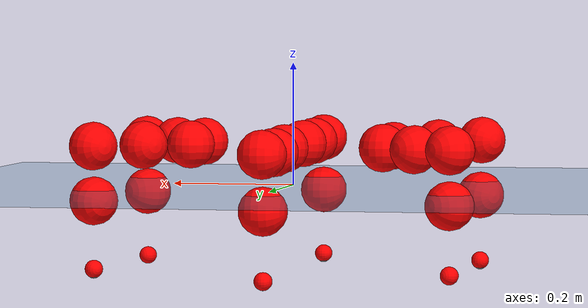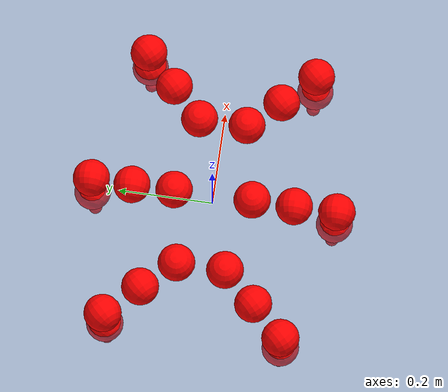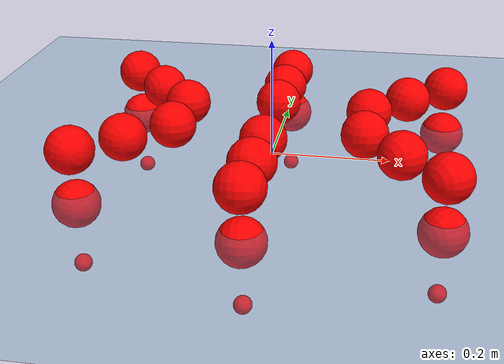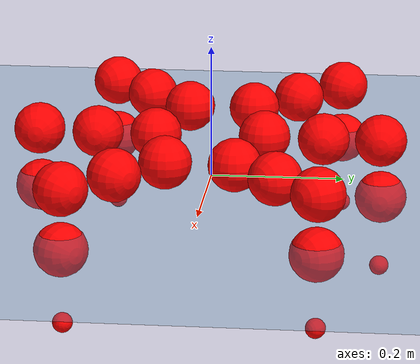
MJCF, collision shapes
<mujoco model="Golem">
  <compiler angle="radian" assetdir="assets" balanceinertia="true" inertiafromgeom="false"/>

  <option timestep="0.005" density="1.2" viscosity="2e-05"/>

  <size nkey="1"/>

  <visual>
    <quality shadowsize="8192"/>
    <map shadowclip="0.5"/>
  </visual>

  <default>
    <default class="/">
      <joint armature="0.01" damping="0.01" frictionloss="0.01"/>
      <geom contype="0" conaffinity="0" group="1" solref="-1000 -80"/>
      <site size="0.01 0.005 0.005" group="5"/>
      <general forcelimited="true" biastype="affine" gainprm="25" biasprm="0 -25 -0.5"/>
      <default class="visual">
        <geom type="mesh" group="2"/>
      </default>
      <default class="collision">
        <geom group="3"/>
      </default>
      <default class="foot">
        <geom size="0.01 0 0" condim="6" group="4" priority="1" solimp="0.015 1 0.01"/>
      </default>
      <default class="reward_collision_sphere">
        <geom group="5" rgba="1 0 0 1"/>
      </default>
    </default>
  </default>

  <asset>
    <texture type="skybox" colorspace="auto" name="//unnamed_texture_0" builtin="gradient" rgb1="0.95 0.95 0.95" rgb2="0.95 0.95 0.95" width="100" height="600"/>
    <texture type="2d" colorspace="auto" name="texplane" builtin="checker" rgb1="0.345 0.575 0.748" rgb2="0.345 0.575 0.748" markrgb="1 1 1" width="512" height="512"/>
    <material name="MatPlane" class="/" texture="texplane" texuniform="true" texrepeat="2 2" specular="0.9"/>
    <mesh name="body" class="/" file="body.stl" scale="0.001 0.001 0.001"/>
    <mesh name="coxa" class="/" file="coxa.stl" scale="0.001 0.001 0.001"/>
    <mesh name="femur" class="/" file="femur.stl" scale="0.001 0.001 0.001"/>
    <mesh name="tibia" class="/" file="tibia.stl" scale="0.001 0.001 0.001"/>
    <mesh name="tarsus" class="/" file="tarsus.stl" scale="0.001 0.001 0.001"/>
  </asset>

  <worldbody>
    <geom name="floor" class="/" size="100 100 0.125" type="plane" group="0" material="MatPlane"/>
    <light name="toplight_shadow" class="/" pos="0 0 5" dir="0.0990148 0.0990148 -0.990148" type="directional" ambient="0.04 0.04 0.04" diffuse="0.55 0.55 0.55" specular="0.12 0.12 0.12"/>
    <light name="toplight_fill" class="/" pos="0 0 5" dir="0.0990148 0.0990148 -0.990148" type="directional" castshadow="false" ambient="0.04 0.04 0.04" diffuse="0.3 0.3 0.3" specular="0.08 0.08 0.08"/>
    <body name="trunk" pos="-0.000163468 0.000438747 -0.00135849" quat="1 -0.000377024 -0.000503877 -0.000278291">
      <inertial pos="0.00260318 0.001154 -0.00475722" quat="0.9999 -0.0135043 0.00400187 -0.00102802" mass="3.39721" diaginertia="0.0111361 0.00437243 0.0135506"/>
      <joint name="//unnamed_joint_0" type="free"/>
      <geom name="//unnamed_geom_1" class="/" pos="0 0 0.0675719" quat="1 0 0 0" type="mesh" rgba="0.9 0.9 0.9 1" mesh="body"/>
      <site name="imu" class="/" pos="0.128188 0.000217924 0.100588" size="0.00974264"/>
      <camera name="track" class="/" pos="0 -1.69573 0" quat="0.707107 0.707107 0 0" mode="trackcom"/>
      <camera name="ego_camera" class="/" pos="0.132485 0 0.105581" quat="-0.5 -0.5 0.5 0.5"/>
      <body name="coxa_RR" pos="-0.179957 -0.0711957 0.064996" quat="0.382729 -3.90226e-05 6.88128e-05 -0.923861">
        <inertial pos="-0.000500138 -0.00268101 0.000524779" quat="1 -8.23371e-05 -0.000351002 -2.74113e-05" mass="0.179651" diaginertia="0.0106419 0.00407872 0.0130654"/>
        <joint name="coxa_joint_RR" class="/" pos="0 0 0" axis="0.00148285 -0.00298852 -0.999994" range="-3.19331 3.14606" armature="0.0100615" damping="0" frictionloss="0.00959644"/>
        <geom name="//unnamed_geom_2" class="/" type="mesh" rgba="0.2 0.2 0.2 1" mesh="coxa"/>
        <geom name="//unnamed_geom_3" class="reward_collision_sphere" size="0.0389706" pos="-0.0305735 0 0"/>
        <body name="femur_RR" pos="0.0624326 0.00234049 0.00213708" quat="0.499719 -0.499833 0.499384 0.501062">
          <inertial pos="0.00137315 -0.000222016 -0.00277442" quat="0.999992 0.000155331 -0.00169183 -0.00370993" mass="0.179592" diaginertia="0.0108828 0.00425628 0.0132971"/>
          <joint name="femur_joint_RR" class="/" pos="0 0 0" axis="0.000818987 -0.00766 -0.99997" range="-3.13609 3.18114" armature="0.00983726" damping="0" frictionloss="0.0110445"/>
          <geom name="//unnamed_geom_4" class="/" type="mesh" rgba="0.9 0.9 0.9 1" mesh="femur"/>
          <geom name="//unnamed_geom_5" class="reward_collision_sphere" size="0.0389706"/>
          <body name="tibia_RR" pos="-0.00211756 -0.0912132 0.000471034" quat="-0.000169248 1 -0.000107325 -8.1709e-05">
            <inertial pos="0.000983366 -0.000580178 -0.00101692" quat="0.999996 -0.00138133 -0.0013862 0.00183387" mass="0.184771" diaginertia="0.0113606 0.00443336 0.0134458"/>
            <joint name="tibia_joint_RR" class="/" pos="0 0 0" axis="0.0103398 -0.0104404 0.999892" range="-3.0858 3.11092" armature="0.0101702" damping="0.020911" frictionloss="0.00857063"/>
            <geom name="//unnamed_geom_6" class="/" type="mesh" rgba="0.2 0.2 0.2 1" mesh="tibia"/>
            <geom name="//unnamed_geom_7" class="reward_collision_sphere" size="0.0389706"/>
            <body name="tarsus_RR" pos="0.0922813 -0.000229397 -0.00304629" quat="0.999999 0.000335938 0.000682229 -0.00114803">
              <inertial pos="0.0592171 0.000347259 -0.00270017" quat="0.501133 0.494147 0.502341 0.502332" mass="0.186226" diaginertia="0.0107227 0.00443029 0.0126488"/>
              <joint name="tarsus_joint_RR" class="/" pos="0 0 0" axis="-0.00358706 0.00156786 0.999992" range="-3.19314 3.1319" armature="0.00878544" damping="0" frictionloss="0.0108234"/>
              <geom name="//unnamed_geom_8" class="/" type="mesh" rgba="0.9 0.9 0.9 1" mesh="tarsus"/>
              <geom name="foot_1" class="foot" size="0.0107696" pos="0.114141 0 0" quat="0 -0.707107 0 0.707107"/>
              <geom name="//unnamed_geom_10" class="reward_collision_sphere" size="0.0389706"/>
              <geom name="//unnamed_geom_11" class="reward_collision_sphere" size="0.014614" pos="0.109555 0 0"/>
              <site name="foot_1" class="foot" pos="0.114141 0 0" quat="0 -0.707107 0 0.707107" size="0.00974264"/>
            </body>
          </body>
        </body>
      </body>
      <body name="coxa_RM" pos="-0.000248504 -0.115021 0.0652227" quat="0.707108 -0.000227401 6.23791e-05 -0.707105">
        <inertial pos="0.00273745 -0.000551977 -0.00159391" quat="1 0.000680074 0.000428096 0.00039923" mass="0.181141" diaginertia="0.0108705 0.00449284 0.0132812"/>
        <joint name="coxa_joint_RM" class="/" pos="0 0 0" axis="0.00079484 0.000193688 -1" range="-3.15788 3.13529" armature="0.0110192" damping="0.00114409" frictionloss="0.010883"/>
        <geom name="//unnamed_geom_12" class="/" type="mesh" rgba="0.2 0.2 0.2 1" mesh="coxa"/>
        <geom name="//unnamed_geom_13" class="reward_collision_sphere" size="0.0389706" pos="-0.0305735 0 0"/>
        <body name="femur_RM" pos="0.0581995 -0.00188043 0.000341312" quat="0.500051 -0.50005 0.499863 0.500036">
          <inertial pos="0.000660444 -0.00300117 -0.000183997" quat="0.99994 0.000341709 0.00631066 0.00889976" mass="0.182072" diaginertia="0.010642 0.00434372 0.0128048"/>
          <joint name="femur_joint_RM" class="/" pos="0 0 0" axis="-0.0038145 -0.011617 -0.999925" stiffness="0.00905671" range="-3.14916 3.11616" armature="0.0104656" damping="0.0248959" frictionloss="0.00836499"/>
          <geom name="//unnamed_geom_14" class="/" type="mesh" rgba="0.9 0.9 0.9 1" mesh="femur"/>
          <geom name="//unnamed_geom_15" class="reward_collision_sphere" size="0.0389706"/>
          <body name="tibia_RM" pos="-0.00197993 -0.0894852 -0.000565668" quat="0.000745065 0.999999 -0.00108423 0.000543389">
            <inertial pos="-0.00279509 -0.000144293 -0.000898945" quat="0.999901 0.00882439 -0.00895853 0.00625928" mass="0.179975" diaginertia="0.010628 0.00423674 0.0128188"/>
            <joint name="tibia_joint_RM" class="/" pos="0 0 0" axis="7.04104e-06 -7.62809e-05 1" range="-3.15917 3.19431" armature="0.00881835" damping="0.00806853" frictionloss="0.0098671"/>
            <geom name="//unnamed_geom_16" class="/" type="mesh" rgba="0.2 0.2 0.2 1" mesh="tibia"/>
            <geom name="//unnamed_geom_17" class="reward_collision_sphere" size="0.0389706"/>
            <body name="tarsus_RM" pos="0.0897523 -0.00115402 -7.2103e-05" quat="1 -7.2842e-06 0.000412807 -8.07275e-05">
              <inertial pos="0.062849 0.00139429 0.00218149" quat="0.502685 0.50208 0.49685 0.49836" mass="0.183723" diaginertia="0.0109843 0.00431202 0.0130244"/>
              <joint name="tarsus_joint_RM" class="/" pos="0 0 0" axis="0.00776702 -3.96456e-05 0.99997" range="-3.18577 3.09883" armature="0.00967867" damping="0.00469777" frictionloss="0.00861888"/>
              <geom name="//unnamed_geom_18" class="/" type="mesh" rgba="0.9 0.9 0.9 1" mesh="tarsus"/>
              <geom name="foot_2" class="foot" size="0.0107948" pos="0.114141 0 0" quat="0 -0.707107 0 0.707107"/>
              <geom name="//unnamed_geom_20" class="reward_collision_sphere" size="0.0389706"/>
              <geom name="//unnamed_geom_21" class="reward_collision_sphere" size="0.014614" pos="0.109555 0 0"/>
              <site name="foot_2" class="foot" pos="0.114141 0 0" quat="0 -0.707107 0 0.707107" size="0.00974264"/>
            </body>
          </body>
        </body>
      </body>
      <body name="coxa_RF" pos="0.181319 -0.0731915 0.0691306" quat="0.923475 -0.000712551 0.000457686 -0.383658">
        <inertial pos="-0.000974192 -0.00108515 0.00236008" quat="0.999983 0.00344325 -0.00429485 -0.00170263" mass="0.174319" diaginertia="0.0103188 0.00424137 0.012729"/>
        <joint name="coxa_joint_RF" class="/" pos="0 0 0" axis="-0.00408662 -0.00636242 -0.999971" range="-3.12308 3.19431" armature="0.00876882" damping="0" frictionloss="0.010133"/>
        <geom name="//unnamed_geom_22" class="/" type="mesh" rgba="0.2 0.2 0.2 1" mesh="coxa"/>
        <geom name="//unnamed_geom_23" class="reward_collision_sphere" size="0.0389706" pos="-0.0305735 0 0"/>
        <body name="femur_RF" pos="0.0592293 -0.0029801 -0.00216219" quat="0.499707 -0.499913 0.500148 0.500231">
          <inertial pos="-0.0024678 0.000999709 -0.00100185" quat="0.999961 -0.00576471 -0.00488739 0.00459923" mass="0.183114" diaginertia="0.0106735 0.00439185 0.0128651"/>
          <joint name="femur_joint_RF" class="/" pos="0 0 0" axis="-0.00150007 -0.00151568 -0.999998" stiffness="0.00757669" range="-3.1222 3.08315" armature="0.0100704" damping="0" frictionloss="0.00839389"/>
          <geom name="//unnamed_geom_24" class="/" type="mesh" rgba="0.9 0.9 0.9 1" mesh="femur"/>
          <geom name="//unnamed_geom_25" class="reward_collision_sphere" size="0.0389706"/>
          <body name="tibia_RF" pos="0.00100715 -0.0947054 0.0022718" quat="0.000126577 1 7.41432e-07 9.02779e-05">
            <inertial pos="0.000441012 -4.71892e-07 -0.000181681" quat="0.999964 0.00048809 -0.00452088 0.00711835" mass="0.178932" diaginertia="0.0105535 0.00421177 0.0131637"/>
            <joint name="tibia_joint_RF" class="/" pos="0 0 0" axis="0.0043864 0.00815991 0.999957" range="-3.12226 3.1946" armature="0.0095518" damping="0.000802199" frictionloss="0.0111205"/>
            <geom name="//unnamed_geom_26" class="/" type="mesh" rgba="0.2 0.2 0.2 1" mesh="tibia"/>
            <geom name="//unnamed_geom_27" class="reward_collision_sphere" size="0.0389706"/>
            <body name="tarsus_RF" pos="0.0896785 0.000400867 0.00111246" quat="0.999999 0.000862509 0.000737599 -0.000266393">
              <inertial pos="0.0588908 0.000907593 0.0016368" quat="0.503656 0.498142 0.49852 0.499664" mass="0.190707" diaginertia="0.0111153 0.00445748 0.0135127"/>
              <joint name="tarsus_joint_RF" class="/" pos="0 0 0" axis="-0.0100486 -0.0100595 0.999899" stiffness="0.0262183" range="-3.09611 3.14588" armature="0.0100818" damping="0.0082762" frictionloss="0.0099853"/>
              <geom name="//unnamed_geom_28" class="/" type="mesh" rgba="0.9 0.9 0.9 1" mesh="tarsus"/>
              <geom name="foot_3" class="foot" size="0.00953119" pos="0.114141 0 0" quat="0 -0.707107 0 0.707107"/>
              <geom name="//unnamed_geom_30" class="reward_collision_sphere" size="0.0389706"/>
              <geom name="//unnamed_geom_31" class="reward_collision_sphere" size="0.014614" pos="0.109555 0 0"/>
              <site name="foot_3" class="foot" pos="0.114141 0 0" quat="0 -0.707107 0 0.707107" size="0.00974264"/>
            </body>
          </body>
        </body>
      </body>
      <body name="coxa_LR" pos="-0.178763 0.0735134 0.0661179" quat="0.382521 0.000649585 0.000114695 0.923946">
        <inertial pos="-0.0024099 -0.00241811 0.000803019" quat="0.999931 0.00550005 0.0103448 0.00118708" mass="0.179886" diaginertia="0.0106413 0.00411327 0.0127046"/>
        <joint name="coxa_joint_LR" class="/" pos="0 0 0" axis="-0.00222385 0.00332899 -0.999992" stiffness="0.0133875" range="-3.19552 3.19359" armature="0.0109907" damping="0" frictionloss="0.00924631"/>
        <geom name="//unnamed_geom_32" class="/" type="mesh" rgba="0.2 0.2 0.2 1" mesh="coxa"/>
        <geom name="//unnamed_geom_33" class="reward_collision_sphere" size="0.0389706" pos="-0.0305735 0 0"/>
        <body name="femur_LR" pos="0.0599396 -0.003642 0.0012583" quat="0.499167 -0.500604 0.500324 0.499904">
          <inertial pos="-0.000575723 0.000366176 -5.52807e-05" quat="1 5.96686e-05 0.000354539 0.000277922" mass="0.186569" diaginertia="0.0109166 0.00453166 0.013094"/>
          <joint name="femur_joint_LR" class="/" pos="0 0 0" axis="-0.00427231 -0.000567481 0.999991" range="-3.11211 3.12679" armature="0.00996449" damping="0.017885" frictionloss="0.00966144"/>
          <geom name="//unnamed_geom_34" class="/" type="mesh" rgba="0.9 0.9 0.9 1" mesh="femur"/>
          <geom name="//unnamed_geom_35" class="reward_collision_sphere" size="0.0389706"/>
          <body name="tibia_LR" pos="-0.00276246 -0.0952641 -0.000292001" quat="-0.00136228 0.999999 0.000289017 0.000362387">
            <inertial pos="0.00291141 -0.00222247 -0.00223539" quat="0.999965 0.00285048 7.70687e-05 0.00791092" mass="0.186845" diaginertia="0.0108428 0.00428243 0.0133226"/>
            <joint name="tibia_joint_LR" class="/" pos="0 0 0" axis="0.01351 0.00356895 -0.999902" range="-3.08346 3.1644" armature="0.0107659" damping="0" frictionloss="0.00970269"/>
            <geom name="//unnamed_geom_36" class="/" type="mesh" rgba="0.2 0.2 0.2 1" mesh="tibia"/>
            <geom name="//unnamed_geom_37" class="reward_collision_sphere" size="0.0389706"/>
            <body name="tarsus_LR" pos="0.0873166 -0.000878403 0.000279876" quat="0.999999 -0.000509414 -0.000152239 0.00112387">
              <inertial pos="0.058799 -0.000479435 -0.00127374" quat="0.508362 0.503294 0.491722 0.49646" mass="0.182997" diaginertia="0.0113583 0.00423207 0.0128961"/>
              <joint name="tarsus_joint_LR" class="/" pos="0 0 0" axis="-0.0062834 0.000806423 -0.99998" range="-3.19284 3.08186" armature="0.00853107" damping="0.0025927" frictionloss="0.00837409"/>
              <geom name="//unnamed_geom_38" class="/" type="mesh" rgba="0.9 0.9 0.9 1" mesh="tarsus"/>
              <geom name="foot_4" class="foot" size="0.00970893" pos="0.114141 0 0" quat="0.707107 0 -0.707107 0"/>
              <geom name="//unnamed_geom_40" class="reward_collision_sphere" size="0.0389706"/>
              <geom name="//unnamed_geom_41" class="reward_collision_sphere" size="0.014614" pos="0.109555 0 0"/>
              <site name="foot_4" class="foot" pos="0.114141 0 0" quat="0.707107 0 -0.707107 0" size="0.00974264"/>
            </body>
          </body>
        </body>
      </body>
      <body name="coxa_LM" pos="-0.000706036 0.110601 0.0651422" quat="0.707325 -5.56768e-05 0.000338263 0.706888">
        <inertial pos="-0.00168717 -0.00252244 0.00271687" quat="0.999967 0.00116109 0.00601013 -0.0053573" mass="0.180773" diaginertia="0.0113044 0.00440993 0.0132504"/>
        <joint name="coxa_joint_LM" class="/" pos="0 0 0" axis="0.00051215 -1.55437e-06 -1" range="-3.15814 3.16199" armature="0.0106626" damping="0.00822322" frictionloss="0.0111051"/>
        <geom name="//unnamed_geom_42" class="/" type="mesh" rgba="0.2 0.2 0.2 1" mesh="coxa"/>
        <geom name="//unnamed_geom_43" class="reward_collision_sphere" size="0.0389706" pos="-0.0305735 0 0"/>
        <body name="femur_LM" pos="0.0584824 0.000761907 -0.00183158" quat="0.499706 -0.500065 0.50025 0.499979">
          <inertial pos="0.00255644 -0.000369679 -0.00157578" quat="0.99993 0.00199481 0.004266 -0.0108635" mass="0.196575" diaginertia="0.0111297 0.00454333 0.0131771"/>
          <joint name="femur_joint_LM" class="/" pos="0 0 0" axis="-0.000365578 0.000205439 1" range="-3.10514 3.12265" armature="0.00975399" damping="0.0167874" frictionloss="0.0084666"/>
          <geom name="//unnamed_geom_44" class="/" type="mesh" rgba="0.9 0.9 0.9 1" mesh="femur"/>
          <geom name="//unnamed_geom_45" class="reward_collision_sphere" size="0.0389706"/>
          <body name="tibia_LM" pos="-0.00098472 -0.0859919 -0.00209325" quat="-0.000265632 1 3.60366e-06 0.000914223">
            <inertial pos="0.00284164 -0.00119534 -0.00178224" quat="0.999976 0.00622061 0.00220766 0.00220312" mass="0.187164" diaginertia="0.0111226 0.00439452 0.0128486"/>
            <joint name="tibia_joint_LM" class="/" pos="0 0 0" axis="-0.00502553 -0.0144597 -0.999883" stiffness="0.00052126" range="-3.14465 3.1377" armature="0.0095549" damping="0.00762567" frictionloss="0.00871042"/>
            <geom name="//unnamed_geom_46" class="/" type="mesh" rgba="0.2 0.2 0.2 1" mesh="tibia"/>
            <geom name="//unnamed_geom_47" class="reward_collision_sphere" size="0.0389706"/>
            <body name="tarsus_LM" pos="0.089005 0.00140947 -0.00181375" quat="1 -0.000450229 0.000562314 -0.000294286">
              <inertial pos="0.0614648 -0.000152427 0.0028621" quat="0.495162 0.499228 0.501357 0.504211" mass="0.19019" diaginertia="0.0110761 0.00428254 0.0132491"/>
              <joint name="tarsus_joint_LM" class="/" pos="0 0 0" axis="0.000492547 8.4012e-05 -1" stiffness="0.0010729" range="-3.15299 3.15511" armature="0.010128" damping="0.00116114" frictionloss="0.0104415"/>
              <geom name="//unnamed_geom_48" class="/" type="mesh" rgba="0.9 0.9 0.9 1" mesh="tarsus"/>
              <geom name="foot_5" class="foot" size="0.0100599" pos="0.114141 0 0" quat="0.707107 0 -0.707107 0"/>
              <geom name="//unnamed_geom_50" class="reward_collision_sphere" size="0.0389706"/>
              <geom name="//unnamed_geom_51" class="reward_collision_sphere" size="0.014614" pos="0.109555 0 0"/>
              <site name="foot_5" class="foot" pos="0.114141 0 0" quat="0.707107 0 -0.707107 0" size="0.00974264"/>
            </body>
          </body>
        </body>
      </body>
      <body name="coxa_LF" pos="0.182329 0.0710397 0.0686702" quat="0.923811 -0.00016766 -0.000336366 0.382849">
        <inertial pos="0.000627757 0.000483819 0.00182101" quat="0.999927 -0.0101523 -0.00638765 0.00154825" mass="0.180819" diaginertia="0.0109468 0.00450508 0.0128363"/>
        <joint name="coxa_joint_LF" class="/" pos="0 0 0" axis="-1.40368e-05 0.0117071 -0.999931" range="-3.14329 3.12729" armature="0.00862704" damping="0.000485055" frictionloss="0.0096384"/>
        <geom name="//unnamed_geom_52" class="/" type="mesh" rgba="0.2 0.2 0.2 1" mesh="coxa"/>
        <geom name="//unnamed_geom_53" class="reward_collision_sphere" size="0.0389706" pos="-0.0305735 0 0"/>
        <body name="femur_LF" pos="0.059313 -0.000705264 0.00156797" quat="0.500058 -0.499998 0.499976 0.499968">
          <inertial pos="-6.15333e-05 0.000226726 -0.000316544" quat="0.99999 0.00182344 -0.00315778 0.00273304" mass="0.176316" diaginertia="0.0110212 0.00430382 0.0130115"/>
          <joint name="femur_joint_LF" class="/" pos="0 0 0" axis="0.00100841 0.00186187 0.999998" stiffness="0.000296654" range="-3.1599 3.15886" armature="0.0111172" damping="0.0172245" frictionloss="0.0103513"/>
          <geom name="//unnamed_geom_54" class="/" type="mesh" rgba="0.9 0.9 0.9 1" mesh="femur"/>
          <geom name="//unnamed_geom_55" class="reward_collision_sphere" size="0.0389706"/>
          <body name="tibia_LF" pos="-0.000416785 -0.093131 -0.00197022" quat="-0.00121714 0.999999 -0.000358551 -0.00054067">
            <inertial pos="-0.00250675 0.000104616 0.00106419" quat="1 0.000230826 0.000164122 -0.0001304" mass="0.19162" diaginertia="0.0109869 0.00437568 0.0135356"/>
            <joint name="tibia_joint_LF" class="/" pos="0 0 0" axis="0.00296069 0.00359036 -0.999989" range="-3.13004 3.13125" armature="0.0111469" damping="0" frictionloss="0.00938269"/>
            <geom name="//unnamed_geom_56" class="/" type="mesh" rgba="0.2 0.2 0.2 1" mesh="tibia"/>
            <geom name="//unnamed_geom_57" class="reward_collision_sphere" size="0.0389706"/>
            <body name="tarsus_LF" pos="0.0879079 -0.00132032 0.000326869" quat="1 -3.44635e-05 0.000135548 -2.83722e-05">
              <inertial pos="0.061923 0.00319872 -0.000224884" quat="0.507443 0.497988 0.489677 0.504704" mass="0.17949" diaginertia="0.0113203 0.00426213 0.0135444"/>
              <joint name="tarsus_joint_LF" class="/" pos="0 0 0" axis="-0.00760423 -0.0124169 -0.999894" range="-3.12301 3.13133" armature="0.0109395" damping="0.00962371" frictionloss="0.00958395"/>
              <geom name="//unnamed_geom_58" class="/" type="mesh" rgba="0.9 0.9 0.9 1" mesh="tarsus"/>
              <geom name="foot_6" class="foot" size="0.0105869" pos="0.114141 0 0" quat="0.707107 0 -0.707107 0"/>
              <geom name="//unnamed_geom_60" class="reward_collision_sphere" size="0.0389706"/>
              <geom name="//unnamed_geom_61" class="reward_collision_sphere" size="0.014614" pos="0.109555 0 0"/>
              <site name="foot_6" class="foot" pos="0.114141 0 0" quat="0.707107 0 -0.707107 0" size="0.00974264"/>
            </body>
          </body>
        </body>
      </body>
    </body>
  </worldbody>

  <contact>
    <pair class="/" geom1="floor" geom2="foot_1" name="//unnamed_contact_0"/>
    <pair class="/" geom1="floor" geom2="foot_2" name="//unnamed_contact_1"/>
    <pair class="/" geom1="floor" geom2="foot_3" name="//unnamed_contact_2"/>
    <pair class="/" geom1="floor" geom2="foot_4" name="//unnamed_contact_3"/>
    <pair class="/" geom1="floor" geom2="foot_5" name="//unnamed_contact_4"/>
    <pair class="/" geom1="floor" geom2="foot_6" name="//unnamed_contact_5"/>
  </contact>

  <actuator>
    <general name="coxa_joint_RR" class="/" joint="coxa_joint_RR" forcerange="-6.50908 6.50908" gainprm="24.7092" biasprm="0 -24.7092 -0.47166"/>
    <general name="femur_joint_RR" class="/" joint="femur_joint_RR" forcerange="-7.30717 7.30717" gainprm="24.7092" biasprm="0 -24.7092 -0.47166"/>
    <general name="tibia_joint_RR" class="/" joint="tibia_joint_RR" forcerange="-6.64324 6.64324" gainprm="24.7092" biasprm="0 -24.7092 -0.47166"/>
    <general name="tarsus_joint_RR" class="/" joint="tarsus_joint_RR" forcerange="-7.5367 7.5367" gainprm="24.7092" biasprm="0 -24.7092 -0.47166"/>
    <general name="coxa_joint_RM" class="/" joint="coxa_joint_RM" forcerange="-6.94213 6.94213" gainprm="24.7092" biasprm="0 -24.7092 -0.47166"/>
    <general name="femur_joint_RM" class="/" joint="femur_joint_RM" forcerange="-7.06086 7.06086" gainprm="24.7092" biasprm="0 -24.7092 -0.47166"/>
    <general name="tibia_joint_RM" class="/" joint="tibia_joint_RM" forcerange="-7.17518 7.17518" gainprm="24.7092" biasprm="0 -24.7092 -0.47166"/>
    <general name="tarsus_joint_RM" class="/" joint="tarsus_joint_RM" forcerange="-7.27595 7.27595" gainprm="24.7092" biasprm="0 -24.7092 -0.47166"/>
    <general name="coxa_joint_RF" class="/" joint="coxa_joint_RF" forcerange="-7.86637 7.86637" gainprm="24.7092" biasprm="0 -24.7092 -0.47166"/>
    <general name="femur_joint_RF" class="/" joint="femur_joint_RF" forcerange="-6.85414 6.85414" gainprm="24.7092" biasprm="0 -24.7092 -0.47166"/>
    <general name="tibia_joint_RF" class="/" joint="tibia_joint_RF" forcerange="-7.84253 7.84253" gainprm="24.7092" biasprm="0 -24.7092 -0.47166"/>
    <general name="tarsus_joint_RF" class="/" joint="tarsus_joint_RF" forcerange="-6.4157 6.4157" gainprm="24.7092" biasprm="0 -24.7092 -0.47166"/>
    <general name="coxa_joint_LR" class="/" joint="coxa_joint_LR" forcerange="-6.36331 6.36331" gainprm="24.7092" biasprm="0 -24.7092 -0.47166"/>
    <general name="femur_joint_LR" class="/" joint="femur_joint_LR" forcerange="-6.86061 6.86061" gainprm="24.7092" biasprm="0 -24.7092 -0.47166"/>
    <general name="tibia_joint_LR" class="/" joint="tibia_joint_LR" forcerange="-7.03361 7.03361" gainprm="24.7092" biasprm="0 -24.7092 -0.47166"/>
    <general name="tarsus_joint_LR" class="/" joint="tarsus_joint_LR" forcerange="-6.36576 6.36576" gainprm="24.7092" biasprm="0 -24.7092 -0.47166"/>
    <general name="coxa_joint_LM" class="/" joint="coxa_joint_LM" forcerange="-7.00871 7.00871" gainprm="24.7092" biasprm="0 -24.7092 -0.47166"/>
    <general name="femur_joint_LM" class="/" joint="femur_joint_LM" forcerange="-6.38182 6.38182" gainprm="24.7092" biasprm="0 -24.7092 -0.47166"/>
    <general name="tibia_joint_LM" class="/" joint="tibia_joint_LM" forcerange="-6.46751 6.46751" gainprm="24.7092" biasprm="0 -24.7092 -0.47166"/>
    <general name="tarsus_joint_LM" class="/" joint="tarsus_joint_LM" forcerange="-6.91296 6.91296" gainprm="24.7092" biasprm="0 -24.7092 -0.47166"/>
    <general name="coxa_joint_LF" class="/" joint="coxa_joint_LF" forcerange="-6.66552 6.66552" gainprm="24.7092" biasprm="0 -24.7092 -0.47166"/>
    <general name="femur_joint_LF" class="/" joint="femur_joint_LF" forcerange="-6.36257 6.36257" gainprm="24.7092" biasprm="0 -24.7092 -0.47166"/>
    <general name="tibia_joint_LF" class="/" joint="tibia_joint_LF" forcerange="-7.86242 7.86242" gainprm="24.7092" biasprm="0 -24.7092 -0.47166"/>
    <general name="tarsus_joint_LF" class="/" joint="tarsus_joint_LF" forcerange="-6.50712 6.50712" gainprm="24.7092" biasprm="0 -24.7092 -0.47166"/>
  </actuator>

  <sensor>
    <gyro site="imu" name="imu_angular_velocity"/>
    <velocimeter site="imu" name="imu_linear_velocity"/>
    <framelinvel objtype="site" objname="foot_1" name="foot_1_global_linear_velocity"/>
    <framelinvel objtype="site" objname="foot_2" name="foot_2_global_linear_velocity"/>
    <framelinvel objtype="site" objname="foot_3" name="foot_3_global_linear_velocity"/>
    <framelinvel objtype="site" objname="foot_4" name="foot_4_global_linear_velocity"/>
    <framelinvel objtype="site" objname="foot_5" name="foot_5_global_linear_velocity"/>
    <framelinvel objtype="site" objname="foot_6" name="foot_6_global_linear_velocity"/>
  </sensor>

  <keyframe>
    <key name="home" qpos="0 0 0.1457 1 0 0 0 0 0 0 0 0 0 0 0 0 0 0 0 0 0 0 0 0 0 0 0 0 0 0 0"/>
  </keyframe>
</mujoco>
